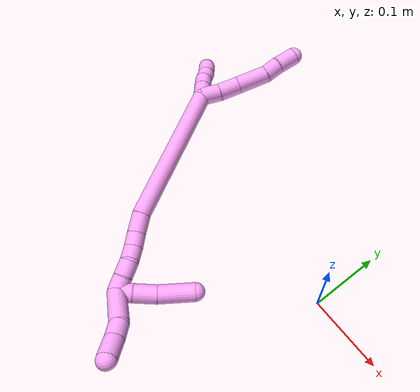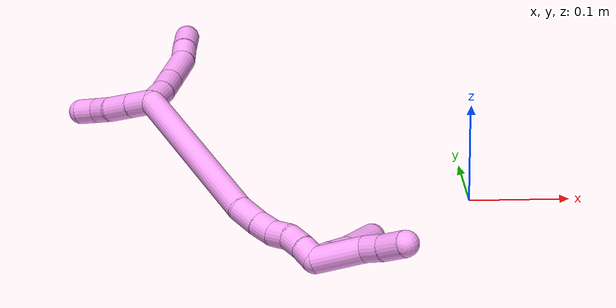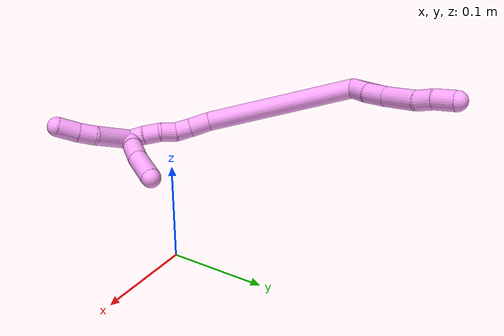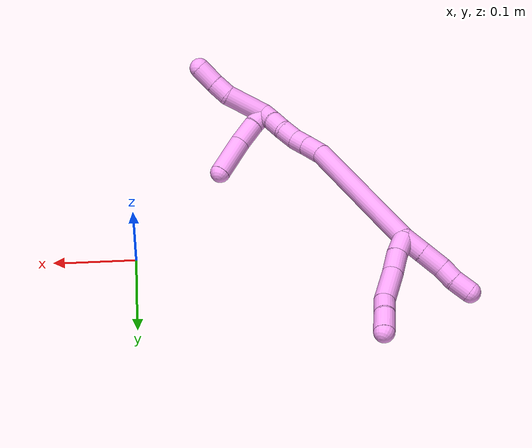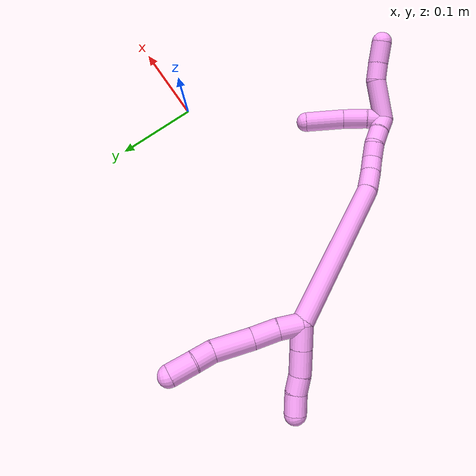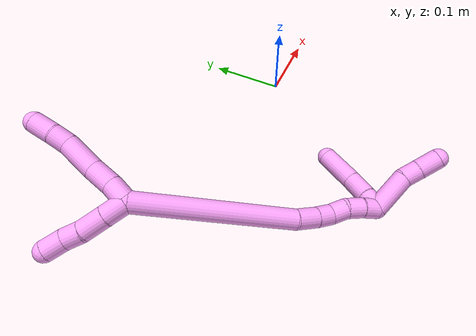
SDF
<sdf version="1.7">
 <world name="default">
  <model name="4">
   <static>0</static>
   <link name="4">
    <collision name="collision-cylinder-e_1_2_8">
     <pose>-0.001006 -0.000696 0.013234 0.052541 -0.075778 -0.001992</pose>
     <geometry><cylinder><radius>0.0125</radius><length>0.026581</length></cylinder></geometry>
     <surface>
      <friction><ode><mu>1.16</mu><mu2>1.16</mu2><slip1>0</slip1><slip2>0</slip2></ode></friction>
      <contact><ode><kp>1e+06</kp><kd>1</kd><max_vel>0</max_vel><min_depth>0.001</min_depth></ode></contact>
     </surface>
    </collision>
    <visual name="visual-cylinder-e_1_2_8">
     <pose>-0.001006 -0.000696 0.013234 0.052541 -0.075778 -0.001992</pose>
     <geometry><cylinder><radius>0.0125</radius><length>0.026581</length></cylinder></geometry>
     <material><ambient>1 0.65098 0.996078 1</ambient></material>
    </visual>
    <collision name="collision-cylinder-e_2_8_9">
     <pose>-0.00412 -0.000376 0.040986 -0.069873 -0.14384 0.005036</pose>
     <geometry><cylinder><radius>0.0125</radius><length>0.029411</length></cylinder></geometry>
     <surface>
      <friction><ode><mu>1.16</mu><mu2>1.16</mu2><slip1>0</slip1><slip2>0</slip2></ode></friction>
      <contact><ode><kp>1e+06</kp><kd>1</kd><max_vel>0</max_vel><min_depth>0.001</min_depth></ode></contact>
     </surface>
    </collision>
    <visual name="visual-cylinder-e_2_8_9">
     <pose>-0.00412 -0.000376 0.040986 -0.069873 -0.14384 0.005036</pose>
     <geometry><cylinder><radius>0.0125</radius><length>0.029411</length></cylinder></geometry>
     <material><ambient>1 0.65098 0.996078 1</ambient></material>
    </visual>
    <collision name="collision-cylinder-e_3_9_10">
     <pose>-0.010561 0.000944 0.077231 -0.013994 -0.196812 0.001382</pose>
     <geometry><cylinder><radius>0.0125</radius><length>0.044313</length></cylinder></geometry>
     <surface>
      <friction><ode><mu>1.16</mu><mu2>1.16</mu2><slip1>0</slip1><slip2>0</slip2></ode></friction>
      <contact><ode><kp>1e+06</kp><kd>1</kd><max_vel>0</max_vel><min_depth>0.001</min_depth></ode></contact>
     </surface>
    </collision>
    <visual name="visual-cylinder-e_3_9_10">
     <pose>-0.010561 0.000944 0.077231 -0.013994 -0.196812 0.001382</pose>
     <geometry><cylinder><radius>0.0125</radius><length>0.044313</length></cylinder></geometry>
     <material><ambient>1 0.65098 0.996078 1</ambient></material>
    </visual>
    <collision name="collision-cylinder-e_4_10_11">
     <pose>-0.018793 0.003434 0.108948 -0.215409 -0.364309 0.039826</pose>
     <geometry><cylinder><radius>0.0125</radius><length>0.021889</length></cylinder></geometry>
     <surface>
      <friction><ode><mu>1.16</mu><mu2>1.16</mu2><slip1>0</slip1><slip2>0</slip2></ode></friction>
      <contact><ode><kp>1e+06</kp><kd>1</kd><max_vel>0</max_vel><min_depth>0.001</min_depth></ode></contact>
     </surface>
    </collision>
    <visual name="visual-cylinder-e_4_10_11">
     <pose>-0.018793 0.003434 0.108948 -0.215409 -0.364309 0.039826</pose>
     <geometry><cylinder><radius>0.0125</radius><length>0.021889</length></cylinder></geometry>
     <material><ambient>1 0.65098 0.996078 1</ambient></material>
    </visual>
    <collision name="collision-cylinder-e_5_11_6">
     <pose>-0.025704 0.008579 0.132184 -0.219764 -0.218325 0.024182</pose>
     <geometry><cylinder><radius>0.0125</radius><length>0.027805</length></cylinder></geometry>
     <surface>
      <friction><ode><mu>1.16</mu><mu2>1.16</mu2><slip1>0</slip1><slip2>0</slip2></ode></friction>
      <contact><ode><kp>1e+06</kp><kd>1</kd><max_vel>0</max_vel><min_depth>0.001</min_depth></ode></contact>
     </surface>
    </collision>
    <visual name="visual-cylinder-e_5_11_6">
     <pose>-0.025704 0.008579 0.132184 -0.219764 -0.218325 0.024182</pose>
     <geometry><cylinder><radius>0.0125</radius><length>0.027805</length></cylinder></geometry>
     <material><ambient>1 0.65098 0.996078 1</ambient></material>
    </visual>
    <collision name="collision-cylinder-e_1_2_12">
     <pose>0.00196 0.012754 0.003672 -1.29044 0.146595 -0.110426</pose>
     <geometry><cylinder><radius>0.0125</radius><length>0.026831</length></cylinder></geometry>
     <surface>
      <friction><ode><mu>1.16</mu><mu2>1.16</mu2><slip1>0</slip1><slip2>0</slip2></ode></friction>
      <contact><ode><kp>1e+06</kp><kd>1</kd><max_vel>0</max_vel><min_depth>0.001</min_depth></ode></contact>
     </surface>
    </collision>
    <visual name="visual-cylinder-e_1_2_12">
     <pose>0.00196 0.012754 0.003672 -1.29044 0.146595 -0.110426</pose>
     <geometry><cylinder><radius>0.0125</radius><length>0.026831</length></cylinder></geometry>
     <material><ambient>1 0.65098 0.996078 1</ambient></material>
    </visual>
    <collision name="collision-cylinder-e_2_12_13">
     <pose>0.006124 0.039346 0.011402 -1.2856 0.151704 -0.113708</pose>
     <geometry><cylinder><radius>0.0125</radius><length>0.029178</length></cylinder></geometry>
     <surface>
      <friction><ode><mu>1.16</mu><mu2>1.16</mu2><slip1>0</slip1><slip2>0</slip2></ode></friction>
      <contact><ode><kp>1e+06</kp><kd>1</kd><max_vel>0</max_vel><min_depth>0.001</min_depth></ode></contact>
     </surface>
    </collision>
    <visual name="visual-cylinder-e_2_12_13">
     <pose>0.006124 0.039346 0.011402 -1.2856 0.151704 -0.113708</pose>
     <geometry><cylinder><radius>0.0125</radius><length>0.029178</length></cylinder></geometry>
     <material><ambient>1 0.65098 0.996078 1</ambient></material>
    </visual>
    <collision name="collision-cylinder-e_3_13_14">
     <pose>0.009498 0.062252 0.020017 -1.10496 0.114687 -0.070755</pose>
     <geometry><cylinder><radius>0.0125</radius><length>0.020431</length></cylinder></geometry>
     <surface>
      <friction><ode><mu>1.16</mu><mu2>1.16</mu2><slip1>0</slip1><slip2>0</slip2></ode></friction>
      <contact><ode><kp>1e+06</kp><kd>1</kd><max_vel>0</max_vel><min_depth>0.001</min_depth></ode></contact>
     </surface>
    </collision>
    <visual name="visual-cylinder-e_3_13_14">
     <pose>0.009498 0.062252 0.020017 -1.10496 0.114687 -0.070755</pose>
     <geometry><cylinder><radius>0.0125</radius><length>0.020431</length></cylinder></geometry>
     <material><ambient>1 0.65098 0.996078 1</ambient></material>
    </visual>
    <collision name="collision-cylinder-e_4_14_5">
     <pose>0.011472 0.082586 0.027917 -1.28251 0.068436 -0.051096</pose>
     <geometry><cylinder><radius>0.0125</radius><length>0.02356</length></cylinder></geometry>
     <surface>
      <friction><ode><mu>1.16</mu><mu2>1.16</mu2><slip1>0</slip1><slip2>0</slip2></ode></friction>
      <contact><ode><kp>1e+06</kp><kd>1</kd><max_vel>0</max_vel><min_depth>0.001</min_depth></ode></contact>
     </surface>
    </collision>
    <visual name="visual-cylinder-e_4_14_5">
     <pose>0.011472 0.082586 0.027917 -1.28251 0.068436 -0.051096</pose>
     <geometry><cylinder><radius>0.0125</radius><length>0.02356</length></cylinder></geometry>
     <material><ambient>1 0.65098 0.996078 1</ambient></material>
    </visual>
    <collision name="collision-cylinder-e_1_2_15">
     <pose>0.039152 -0.061814 -0.061776 2.35589 0.421192 0.952495</pose>
     <geometry><cylinder><radius>0.0125</radius><length>0.191522</length></cylinder></geometry>
     <surface>
      <friction><ode><mu>1.16</mu><mu2>1.16</mu2><slip1>0</slip1><slip2>0</slip2></ode></friction>
      <contact><ode><kp>1e+06</kp><kd>1</kd><max_vel>0</max_vel><min_depth>0.001</min_depth></ode></contact>
     </surface>
    </collision>
    <visual name="visual-cylinder-e_1_2_15">
     <pose>0.039152 -0.061814 -0.061776 2.35589 0.421192 0.952495</pose>
     <geometry><cylinder><radius>0.0125</radius><length>0.191522</length></cylinder></geometry>
     <material><ambient>1 0.65098 0.996078 1</ambient></material>
    </visual>
    <collision name="collision-cylinder-e_2_15_16">
     <pose>0.084252 -0.133972 -0.129722 2.10867 0.458775 0.780211</pose>
     <geometry><cylinder><radius>0.0125</radius><length>0.026866</length></cylinder></geometry>
     <surface>
      <friction><ode><mu>1.16</mu><mu2>1.16</mu2><slip1>0</slip1><slip2>0</slip2></ode></friction>
      <contact><ode><kp>1e+06</kp><kd>1</kd><max_vel>0</max_vel><min_depth>0.001</min_depth></ode></contact>
     </surface>
    </collision>
    <visual name="visual-cylinder-e_2_15_16">
     <pose>0.084252 -0.133972 -0.129722 2.10867 0.458775 0.780211</pose>
     <geometry><cylinder><radius>0.0125</radius><length>0.026866</length></cylinder></geometry>
     <material><ambient>1 0.65098 0.996078 1</ambient></material>
    </visual>
    <collision name="collision-cylinder-e_3_16_17">
     <pose>0.094104 -0.152633 -0.140056 2.03485 0.39731 0.630045</pose>
     <geometry><cylinder><radius>0.0125</radius><length>0.020175</length></cylinder></geometry>
     <surface>
      <friction><ode><mu>1.16</mu><mu2>1.16</mu2><slip1>0</slip1><slip2>0</slip2></ode></friction>
      <contact><ode><kp>1e+06</kp><kd>1</kd><max_vel>0</max_vel><min_depth>0.001</min_depth></ode></contact>
     </surface>
    </collision>
    <visual name="visual-cylinder-e_3_16_17">
     <pose>0.094104 -0.152633 -0.140056 2.03485 0.39731 0.630045</pose>
     <geometry><cylinder><radius>0.0125</radius><length>0.020175</length></cylinder></geometry>
     <material><ambient>1 0.65098 0.996078 1</ambient></material>
    </visual>
    <collision name="collision-cylinder-e_4_17_18">
     <pose>0.09892 -0.170185 -0.148469 2.00213 0.089523 0.139616</pose>
     <geometry><cylinder><radius>0.0125</radius><length>0.020412</length></cylinder></geometry>
     <surface>
      <friction><ode><mu>1.16</mu><mu2>1.16</mu2><slip1>0</slip1><slip2>0</slip2></ode></friction>
      <contact><ode><kp>1e+06</kp><kd>1</kd><max_vel>0</max_vel><min_depth>0.001</min_depth></ode></contact>
     </surface>
    </collision>
    <visual name="visual-cylinder-e_4_17_18">
     <pose>0.09892 -0.170185 -0.148469 2.00213 0.089523 0.139616</pose>
     <geometry><cylinder><radius>0.0125</radius><length>0.020412</length></cylinder></geometry>
     <material><ambient>1 0.65098 0.996078 1</ambient></material>
    </visual>
    <collision name="collision-cylinder-e_5_18_19">
     <pose>0.103354 -0.187304 -0.158693 2.21922 0.341981 0.668873</pose>
     <geometry><cylinder><radius>0.0125</radius><length>0.021002</length></cylinder></geometry>
     <surface>
      <friction><ode><mu>1.16</mu><mu2>1.16</mu2><slip1>0</slip1><slip2>0</slip2></ode></friction>
      <contact><ode><kp>1e+06</kp><kd>1</kd><max_vel>0</max_vel><min_depth>0.001</min_depth></ode></contact>
     </surface>
    </collision>
    <visual name="visual-cylinder-e_5_18_19">
     <pose>0.103354 -0.187304 -0.158693 2.21922 0.341981 0.668873</pose>
     <geometry><cylinder><radius>0.0125</radius><length>0.021002</length></cylinder></geometry>
     <material><ambient>1 0.65098 0.996078 1</ambient></material>
    </visual>
    <collision name="collision-cylinder-e_6_19_1">
     <pose>0.111307 -0.202019 -0.170494 2.27709 0.45853 0.936618</pose>
     <geometry><cylinder><radius>0.0125</radius><length>0.020024</length></cylinder></geometry>
     <surface>
      <friction><ode><mu>1.16</mu><mu2>1.16</mu2><slip1>0</slip1><slip2>0</slip2></ode></friction>
      <contact><ode><kp>1e+06</kp><kd>1</kd><max_vel>0</max_vel><min_depth>0.001</min_depth></ode></contact>
     </surface>
    </collision>
    <visual name="visual-cylinder-e_6_19_1">
     <pose>0.111307 -0.202019 -0.170494 2.27709 0.45853 0.936618</pose>
     <geometry><cylinder><radius>0.0125</radius><length>0.020024</length></cylinder></geometry>
     <material><ambient>1 0.65098 0.996078 1</ambient></material>
    </visual>
    <collision name="collision-cylinder-e_1_1_20">
     <pose>0.111447 -0.234126 -0.177285 1.6089 -0.168074 -0.174571</pose>
     <geometry><cylinder><radius>0.0125</radius><length>0.051313</length></cylinder></geometry>
     <surface>
      <friction><ode><mu>1.16</mu><mu2>1.16</mu2><slip1>0</slip1><slip2>0</slip2></ode></friction>
      <contact><ode><kp>1e+06</kp><kd>1</kd><max_vel>0</max_vel><min_depth>0.001</min_depth></ode></contact>
     </surface>
    </collision>
    <visual name="visual-cylinder-e_1_1_20">
     <pose>0.111447 -0.234126 -0.177285 1.6089 -0.168074 -0.174571</pose>
     <geometry><cylinder><radius>0.0125</radius><length>0.051313</length></cylinder></geometry>
     <material><ambient>1 0.65098 0.996078 1</ambient></material>
    </visual>
    <collision name="collision-cylinder-e_2_20_21">
     <pose>0.105761 -0.269435 -0.182124 1.93946 -0.128849 -0.187615</pose>
     <geometry><cylinder><radius>0.0125</radius><length>0.02169</length></cylinder></geometry>
     <surface>
      <friction><ode><mu>1.16</mu><mu2>1.16</mu2><slip1>0</slip1><slip2>0</slip2></ode></friction>
      <contact><ode><kp>1e+06</kp><kd>1</kd><max_vel>0</max_vel><min_depth>0.001</min_depth></ode></contact>
     </surface>
    </collision>
    <visual name="visual-cylinder-e_2_20_21">
     <pose>0.105761 -0.269435 -0.182124 1.93946 -0.128849 -0.187615</pose>
     <geometry><cylinder><radius>0.0125</radius><length>0.02169</length></cylinder></geometry>
     <material><ambient>1 0.65098 0.996078 1</ambient></material>
    </visual>
    <collision name="collision-cylinder-e_3_21_4">
     <pose>0.10138 -0.291626 -0.191045 1.96409 -0.223167 -0.332505</pose>
     <geometry><cylinder><radius>0.0125</radius><length>0.026997</length></cylinder></geometry>
     <surface>
      <friction><ode><mu>1.16</mu><mu2>1.16</mu2><slip1>0</slip1><slip2>0</slip2></ode></friction>
      <contact><ode><kp>1e+06</kp><kd>1</kd><max_vel>0</max_vel><min_depth>0.001</min_depth></ode></contact>
     </surface>
    </collision>
    <visual name="visual-cylinder-e_3_21_4">
     <pose>0.10138 -0.291626 -0.191045 1.96409 -0.223167 -0.332505</pose>
     <geometry><cylinder><radius>0.0125</radius><length>0.026997</length></cylinder></geometry>
     <material><ambient>1 0.65098 0.996078 1</ambient></material>
    </visual>
    <collision name="collision-cylinder-e_1_1_22">
     <pose>0.116908 -0.21249 -0.166583 0.357769 0.112052 0.020282</pose>
     <geometry><cylinder><radius>0.0125</radius><length>0.020924</length></cylinder></geometry>
     <surface>
      <friction><ode><mu>1.16</mu><mu2>1.16</mu2><slip1>0</slip1><slip2>0</slip2></ode></friction>
      <contact><ode><kp>1e+06</kp><kd>1</kd><max_vel>0</max_vel><min_depth>0.001</min_depth></ode></contact>
     </surface>
    </collision>
    <visual name="visual-cylinder-e_1_1_22">
     <pose>0.116908 -0.21249 -0.166583 0.357769 0.112052 0.020282</pose>
     <geometry><cylinder><radius>0.0125</radius><length>0.020924</length></cylinder></geometry>
     <material><ambient>1 0.65098 0.996078 1</ambient></material>
    </visual>
    <collision name="collision-cylinder-e_2_22_23">
     <pose>0.120898 -0.220119 -0.142448 0.270246 0.186537 0.025432</pose>
     <geometry><cylinder><radius>0.0125</radius><length>0.030405</length></cylinder></geometry>
     <surface>
      <friction><ode><mu>1.16</mu><mu2>1.16</mu2><slip1>0</slip1><slip2>0</slip2></ode></friction>
      <contact><ode><kp>1e+06</kp><kd>1</kd><max_vel>0</max_vel><min_depth>0.001</min_depth></ode></contact>
     </surface>
    </collision>
    <visual name="visual-cylinder-e_2_22_23">
     <pose>0.120898 -0.220119 -0.142448 0.270246 0.186537 0.025432</pose>
     <geometry><cylinder><radius>0.0125</radius><length>0.030405</length></cylinder></geometry>
     <material><ambient>1 0.65098 0.996078 1</ambient></material>
    </visual>
    <collision name="collision-cylinder-e_3_23_3">
     <pose>0.126144 -0.228698 -0.104277 0.190768 0.099905 0.009566</pose>
     <geometry><cylinder><radius>0.0125</radius><length>0.04867</length></cylinder></geometry>
     <surface>
      <friction><ode><mu>1.16</mu><mu2>1.16</mu2><slip1>0</slip1><slip2>0</slip2></ode></friction>
      <contact><ode><kp>1e+06</kp><kd>1</kd><max_vel>0</max_vel><min_depth>0.001</min_depth></ode></contact>
     </surface>
    </collision>
    <visual name="visual-cylinder-e_3_23_3">
     <pose>0.126144 -0.228698 -0.104277 0.190768 0.099905 0.009566</pose>
     <geometry><cylinder><radius>0.0125</radius><length>0.04867</length></cylinder></geometry>
     <material><ambient>1 0.65098 0.996078 1</ambient></material>
    </visual>
    <collision name="collision-sphere-3">
     <pose>0.128571 -0.233289 -0.080502 0 -0 0</pose>
     <geometry><sphere><radius>0.0125</radius></sphere></geometry>
     <surface>
      <friction><ode><mu>1.16</mu><mu2>1.16</mu2><slip1>0</slip1><slip2>0</slip2></ode></friction>
      <contact><ode><kp>1e+06</kp><kd>1</kd><max_vel>0</max_vel><min_depth>0.001</min_depth></ode></contact>
     </surface>
    </collision>
    <visual name="visual-sphere-3">
     <pose>0.128571 -0.233289 -0.080502 0 -0 0</pose>
     <geometry><sphere><radius>0.0125</radius></sphere></geometry>
     <material><ambient>1 0.65098 0.996078 1</ambient></material>
    </visual>
    <collision name="collision-sphere-23">
     <pose>0.123717 -0.224107 -0.128051 0 -0 0</pose>
     <geometry><sphere><radius>0.0125</radius></sphere></geometry>
     <surface>
      <friction><ode><mu>1.16</mu><mu2>1.16</mu2><slip1>0</slip1><slip2>0</slip2></ode></friction>
      <contact><ode><kp>1e+06</kp><kd>1</kd><max_vel>0</max_vel><min_depth>0.001</min_depth></ode></contact>
     </surface>
    </collision>
    <visual name="visual-sphere-23">
     <pose>0.123717 -0.224107 -0.128051 0 -0 0</pose>
     <geometry><sphere><radius>0.0125</radius></sphere></geometry>
     <material><ambient>1 0.65098 0.996078 1</ambient></material>
    </visual>
    <collision name="collision-sphere-22">
     <pose>0.118078 -0.21613 -0.156845 0 -0 0</pose>
     <geometry><sphere><radius>0.0125</radius></sphere></geometry>
     <surface>
      <friction><ode><mu>1.16</mu><mu2>1.16</mu2><slip1>0</slip1><slip2>0</slip2></ode></friction>
      <contact><ode><kp>1e+06</kp><kd>1</kd><max_vel>0</max_vel><min_depth>0.001</min_depth></ode></contact>
     </surface>
    </collision>
    <visual name="visual-sphere-22">
     <pose>0.118078 -0.21613 -0.156845 0 -0 0</pose>
     <geometry><sphere><radius>0.0125</radius></sphere></geometry>
     <material><ambient>1 0.65098 0.996078 1</ambient></material>
    </visual>
    <collision name="collision-sphere-4">
     <pose>0.098393 -0.303785 -0.19609 0 -0 0</pose>
     <geometry><sphere><radius>0.0125</radius></sphere></geometry>
     <surface>
      <friction><ode><mu>1.16</mu><mu2>1.16</mu2><slip1>0</slip1><slip2>0</slip2></ode></friction>
      <contact><ode><kp>1e+06</kp><kd>1</kd><max_vel>0</max_vel><min_depth>0.001</min_depth></ode></contact>
     </surface>
    </collision>
    <visual name="visual-sphere-4">
     <pose>0.098393 -0.303785 -0.19609 0 -0 0</pose>
     <geometry><sphere><radius>0.0125</radius></sphere></geometry>
     <material><ambient>1 0.65098 0.996078 1</ambient></material>
    </visual>
    <collision name="collision-sphere-21">
     <pose>0.104368 -0.279467 -0.186 0 -0 0</pose>
     <geometry><sphere><radius>0.0125</radius></sphere></geometry>
     <surface>
      <friction><ode><mu>1.16</mu><mu2>1.16</mu2><slip1>0</slip1><slip2>0</slip2></ode></friction>
      <contact><ode><kp>1e+06</kp><kd>1</kd><max_vel>0</max_vel><min_depth>0.001</min_depth></ode></contact>
     </surface>
    </collision>
    <visual name="visual-sphere-21">
     <pose>0.104368 -0.279467 -0.186 0 -0 0</pose>
     <geometry><sphere><radius>0.0125</radius></sphere></geometry>
     <material><ambient>1 0.65098 0.996078 1</ambient></material>
    </visual>
    <collision name="collision-sphere-20">
     <pose>0.107155 -0.259403 -0.178249 0 -0 0</pose>
     <geometry><sphere><radius>0.0125</radius></sphere></geometry>
     <surface>
      <friction><ode><mu>1.16</mu><mu2>1.16</mu2><slip1>0</slip1><slip2>0</slip2></ode></friction>
      <contact><ode><kp>1e+06</kp><kd>1</kd><max_vel>0</max_vel><min_depth>0.001</min_depth></ode></contact>
     </surface>
    </collision>
    <visual name="visual-sphere-20">
     <pose>0.107155 -0.259403 -0.178249 0 -0 0</pose>
     <geometry><sphere><radius>0.0125</radius></sphere></geometry>
     <material><ambient>1 0.65098 0.996078 1</ambient></material>
    </visual>
    <collision name="collision-sphere-6">
     <pose>-0.028715 0.011538 0.14543 0 -0 0</pose>
     <geometry><sphere><radius>0.0125</radius></sphere></geometry>
     <surface>
      <friction><ode><mu>1.16</mu><mu2>1.16</mu2><slip1>0</slip1><slip2>0</slip2></ode></friction>
      <contact><ode><kp>1e+06</kp><kd>1</kd><max_vel>0</max_vel><min_depth>0.001</min_depth></ode></contact>
     </surface>
    </collision>
    <visual name="visual-sphere-6">
     <pose>-0.028715 0.011538 0.14543 0 -0 0</pose>
     <geometry><sphere><radius>0.0125</radius></sphere></geometry>
     <material><ambient>1 0.65098 0.996078 1</ambient></material>
    </visual>
    <collision name="collision-sphere-11">
     <pose>-0.022693 0.00562 0.118938 0 -0 0</pose>
     <geometry><sphere><radius>0.0125</radius></sphere></geometry>
     <surface>
      <friction><ode><mu>1.16</mu><mu2>1.16</mu2><slip1>0</slip1><slip2>0</slip2></ode></friction>
      <contact><ode><kp>1e+06</kp><kd>1</kd><max_vel>0</max_vel><min_depth>0.001</min_depth></ode></contact>
     </surface>
    </collision>
    <visual name="visual-sphere-11">
     <pose>-0.022693 0.00562 0.118938 0 -0 0</pose>
     <geometry><sphere><radius>0.0125</radius></sphere></geometry>
     <material><ambient>1 0.65098 0.996078 1</ambient></material>
    </visual>
    <collision name="collision-sphere-10">
     <pose>-0.014893 0.001248 0.098958 0 -0 0</pose>
     <geometry><sphere><radius>0.0125</radius></sphere></geometry>
     <surface>
      <friction><ode><mu>1.16</mu><mu2>1.16</mu2><slip1>0</slip1><slip2>0</slip2></ode></friction>
      <contact><ode><kp>1e+06</kp><kd>1</kd><max_vel>0</max_vel><min_depth>0.001</min_depth></ode></contact>
     </surface>
    </collision>
    <visual name="visual-sphere-10">
     <pose>-0.014893 0.001248 0.098958 0 -0 0</pose>
     <geometry><sphere><radius>0.0125</radius></sphere></geometry>
     <material><ambient>1 0.65098 0.996078 1</ambient></material>
    </visual>
    <collision name="collision-sphere-9">
     <pose>-0.006228 0.00064 0.055505 0 -0 0</pose>
     <geometry><sphere><radius>0.0125</radius></sphere></geometry>
     <surface>
      <friction><ode><mu>1.16</mu><mu2>1.16</mu2><slip1>0</slip1><slip2>0</slip2></ode></friction>
      <contact><ode><kp>1e+06</kp><kd>1</kd><max_vel>0</max_vel><min_depth>0.001</min_depth></ode></contact>
     </surface>
    </collision>
    <visual name="visual-sphere-9">
     <pose>-0.006228 0.00064 0.055505 0 -0 0</pose>
     <geometry><sphere><radius>0.0125</radius></sphere></geometry>
     <material><ambient>1 0.65098 0.996078 1</ambient></material>
    </visual>
    <collision name="collision-sphere-2">
     <geometry><sphere><radius>0.0125</radius></sphere></geometry>
     <surface>
      <friction><ode><mu>1.16</mu><mu2>1.16</mu2><slip1>0</slip1><slip2>0</slip2></ode></friction>
      <contact><ode><kp>1e+06</kp><kd>1</kd><max_vel>0</max_vel><min_depth>0.001</min_depth></ode></contact>
     </surface>
    </collision>
    <visual name="visual-sphere-2">
     <geometry><sphere><radius>0.0125</radius></sphere></geometry>
     <material><ambient>1 0.65098 0.996078 1</ambient></material>
    </visual>
    <collision name="collision-sphere-19">
     <pose>0.106875 -0.195189 -0.164668 0 -0 0</pose>
     <geometry><sphere><radius>0.0125</radius></sphere></geometry>
     <surface>
      <friction><ode><mu>1.16</mu><mu2>1.16</mu2><slip1>0</slip1><slip2>0</slip2></ode></friction>
      <contact><ode><kp>1e+06</kp><kd>1</kd><max_vel>0</max_vel><min_depth>0.001</min_depth></ode></contact>
     </surface>
    </collision>
    <visual name="visual-sphere-19">
     <pose>0.106875 -0.195189 -0.164668 0 -0 0</pose>
     <geometry><sphere><radius>0.0125</radius></sphere></geometry>
     <material><ambient>1 0.65098 0.996078 1</ambient></material>
    </visual>
    <collision name="collision-sphere-8">
     <pose>-0.002012 -0.001392 0.026468 0 -0 0</pose>
     <geometry><sphere><radius>0.0125</radius></sphere></geometry>
     <surface>
      <friction><ode><mu>1.16</mu><mu2>1.16</mu2><slip1>0</slip1><slip2>0</slip2></ode></friction>
      <contact><ode><kp>1e+06</kp><kd>1</kd><max_vel>0</max_vel><min_depth>0.001</min_depth></ode></contact>
     </surface>
    </collision>
    <visual name="visual-sphere-8">
     <pose>-0.002012 -0.001392 0.026468 0 -0 0</pose>
     <geometry><sphere><radius>0.0125</radius></sphere></geometry>
     <material><ambient>1 0.65098 0.996078 1</ambient></material>
    </visual>
    <collision name="collision-sphere-12">
     <pose>0.003919 0.025507 0.007344 0 -0 0</pose>
     <geometry><sphere><radius>0.0125</radius></sphere></geometry>
     <surface>
      <friction><ode><mu>1.16</mu><mu2>1.16</mu2><slip1>0</slip1><slip2>0</slip2></ode></friction>
      <contact><ode><kp>1e+06</kp><kd>1</kd><max_vel>0</max_vel><min_depth>0.001</min_depth></ode></contact>
     </surface>
    </collision>
    <visual name="visual-sphere-12">
     <pose>0.003919 0.025507 0.007344 0 -0 0</pose>
     <geometry><sphere><radius>0.0125</radius></sphere></geometry>
     <material><ambient>1 0.65098 0.996078 1</ambient></material>
    </visual>
    <collision name="collision-sphere-13">
     <pose>0.008329 0.053185 0.015459 0 -0 0</pose>
     <geometry><sphere><radius>0.0125</radius></sphere></geometry>
     <surface>
      <friction><ode><mu>1.16</mu><mu2>1.16</mu2><slip1>0</slip1><slip2>0</slip2></ode></friction>
      <contact><ode><kp>1e+06</kp><kd>1</kd><max_vel>0</max_vel><min_depth>0.001</min_depth></ode></contact>
     </surface>
    </collision>
    <visual name="visual-sphere-13">
     <pose>0.008329 0.053185 0.015459 0 -0 0</pose>
     <geometry><sphere><radius>0.0125</radius></sphere></geometry>
     <material><ambient>1 0.65098 0.996078 1</ambient></material>
    </visual>
    <collision name="collision-sphere-14">
     <pose>0.010667 0.071319 0.024576 0 -0 0</pose>
     <geometry><sphere><radius>0.0125</radius></sphere></geometry>
     <surface>
      <friction><ode><mu>1.16</mu><mu2>1.16</mu2><slip1>0</slip1><slip2>0</slip2></ode></friction>
      <contact><ode><kp>1e+06</kp><kd>1</kd><max_vel>0</max_vel><min_depth>0.001</min_depth></ode></contact>
     </surface>
    </collision>
    <visual name="visual-sphere-14">
     <pose>0.010667 0.071319 0.024576 0 -0 0</pose>
     <geometry><sphere><radius>0.0125</radius></sphere></geometry>
     <material><ambient>1 0.65098 0.996078 1</ambient></material>
    </visual>
    <collision name="collision-sphere-5">
     <pose>0.012278 0.093854 0.031258 0 -0 0</pose>
     <geometry><sphere><radius>0.0125</radius></sphere></geometry>
     <surface>
      <friction><ode><mu>1.16</mu><mu2>1.16</mu2><slip1>0</slip1><slip2>0</slip2></ode></friction>
      <contact><ode><kp>1e+06</kp><kd>1</kd><max_vel>0</max_vel><min_depth>0.001</min_depth></ode></contact>
     </surface>
    </collision>
    <visual name="visual-sphere-5">
     <pose>0.012278 0.093854 0.031258 0 -0 0</pose>
     <geometry><sphere><radius>0.0125</radius></sphere></geometry>
     <material><ambient>1 0.65098 0.996078 1</ambient></material>
    </visual>
    <collision name="collision-sphere-15">
     <pose>0.078303 -0.123628 -0.123552 0 -0 0</pose>
     <geometry><sphere><radius>0.0125</radius></sphere></geometry>
     <surface>
      <friction><ode><mu>1.16</mu><mu2>1.16</mu2><slip1>0</slip1><slip2>0</slip2></ode></friction>
      <contact><ode><kp>1e+06</kp><kd>1</kd><max_vel>0</max_vel><min_depth>0.001</min_depth></ode></contact>
     </surface>
    </collision>
    <visual name="visual-sphere-15">
     <pose>0.078303 -0.123628 -0.123552 0 -0 0</pose>
     <geometry><sphere><radius>0.0125</radius></sphere></geometry>
     <material><ambient>1 0.65098 0.996078 1</ambient></material>
    </visual>
    <collision name="collision-sphere-16">
     <pose>0.090201 -0.144315 -0.135892 0 -0 0</pose>
     <geometry><sphere><radius>0.0125</radius></sphere></geometry>
     <surface>
      <friction><ode><mu>1.16</mu><mu2>1.16</mu2><slip1>0</slip1><slip2>0</slip2></ode></friction>
      <contact><ode><kp>1e+06</kp><kd>1</kd><max_vel>0</max_vel><min_depth>0.001</min_depth></ode></contact>
     </surface>
    </collision>
    <visual name="visual-sphere-16">
     <pose>0.090201 -0.144315 -0.135892 0 -0 0</pose>
     <geometry><sphere><radius>0.0125</radius></sphere></geometry>
     <material><ambient>1 0.65098 0.996078 1</ambient></material>
    </visual>
    <collision name="collision-sphere-17">
     <pose>0.098007 -0.160951 -0.144219 0 -0 0</pose>
     <geometry><sphere><radius>0.0125</radius></sphere></geometry>
     <surface>
      <friction><ode><mu>1.16</mu><mu2>1.16</mu2><slip1>0</slip1><slip2>0</slip2></ode></friction>
      <contact><ode><kp>1e+06</kp><kd>1</kd><max_vel>0</max_vel><min_depth>0.001</min_depth></ode></contact>
     </surface>
    </collision>
    <visual name="visual-sphere-17">
     <pose>0.098007 -0.160951 -0.144219 0 -0 0</pose>
     <geometry><sphere><radius>0.0125</radius></sphere></geometry>
     <material><ambient>1 0.65098 0.996078 1</ambient></material>
    </visual>
    <collision name="collision-sphere-18">
     <pose>0.099832 -0.179419 -0.152719 0 -0 0</pose>
     <geometry><sphere><radius>0.0125</radius></sphere></geometry>
     <surface>
      <friction><ode><mu>1.16</mu><mu2>1.16</mu2><slip1>0</slip1><slip2>0</slip2></ode></friction>
      <contact><ode><kp>1e+06</kp><kd>1</kd><max_vel>0</max_vel><min_depth>0.001</min_depth></ode></contact>
     </surface>
    </collision>
    <visual name="visual-sphere-18">
     <pose>0.099832 -0.179419 -0.152719 0 -0 0</pose>
     <geometry><sphere><radius>0.0125</radius></sphere></geometry>
     <material><ambient>1 0.65098 0.996078 1</ambient></material>
    </visual>
    <collision name="collision-sphere-1">
     <pose>0.115738 -0.208849 -0.176321 0 -0 0</pose>
     <geometry><sphere><radius>0.0125</radius></sphere></geometry>
     <surface>
      <friction><ode><mu>1.16</mu><mu2>1.16</mu2><slip1>0</slip1><slip2>0</slip2></ode></friction>
      <contact><ode><kp>1e+06</kp><kd>1</kd><max_vel>0</max_vel><min_depth>0.001</min_depth></ode></contact>
     </surface>
    </collision>
    <visual name="visual-sphere-1">
     <pose>0.115738 -0.208849 -0.176321 0 -0 0</pose>
     <geometry><sphere><radius>0.0125</radius></sphere></geometry>
     <material><ambient>1 0.65098 0.996078 1</ambient></material>
    </visual>
    <inertial>
     <pose>0.053392 -0.097249 -0.061972 0 -0 0</pose>
     <mass>0.75</mass>
     <inertia>
      <ixx>0.000831</ixx>
      <ixy>0</ixy>
      <ixz>0</ixz>
      <iyy>0.000356</iyy>
      <iyz>0</iyz>
      <izz>0.000164</izz>
     </inertia>
    </inertial>
   </link>
   <pose>-0.314414 0.046251 0.093989 -1.70417 1.38827 -0.482528</pose>
  </model>
 </world>
</sdf>
